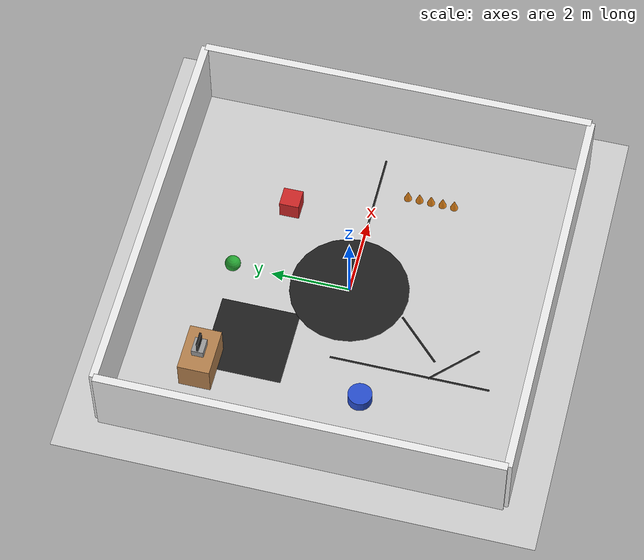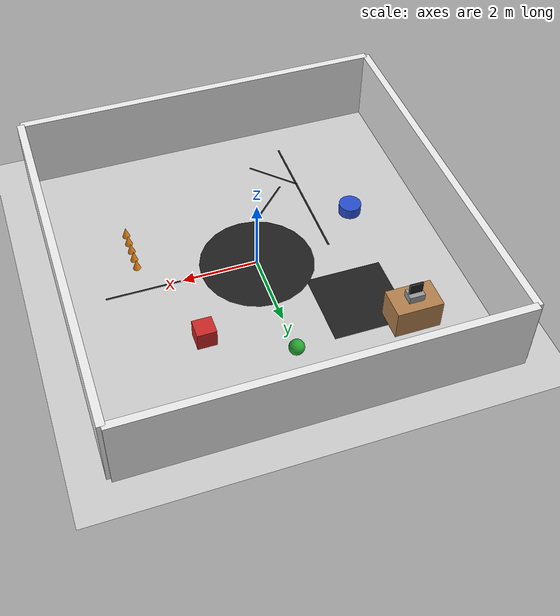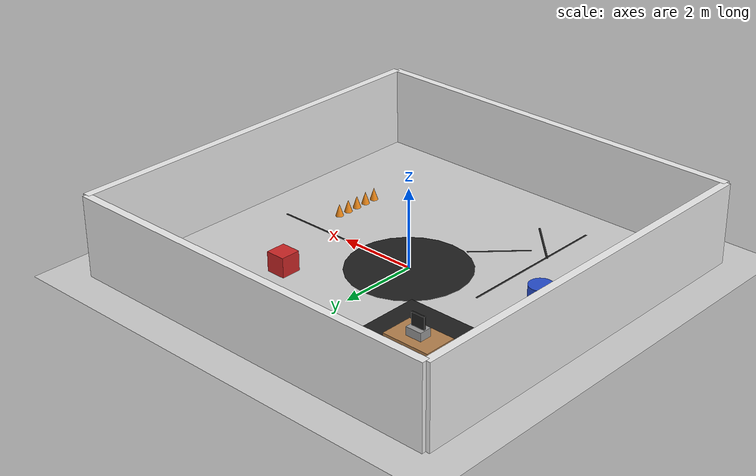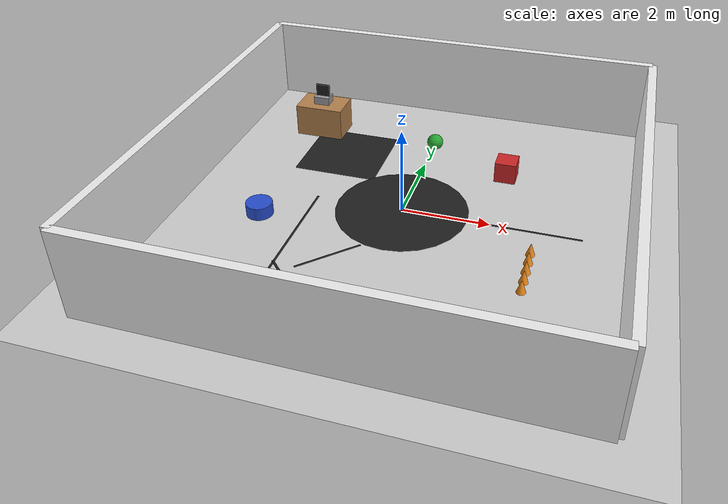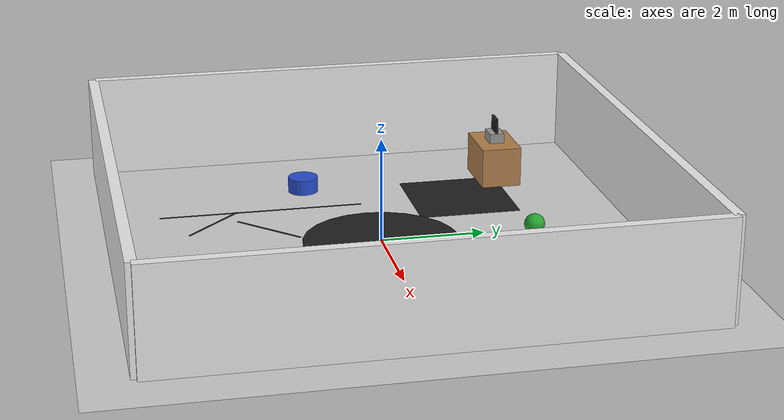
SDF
<?xml version="1.0" ?>
<sdf version="1.6">
  <world name="workshop">
    <!-- Lumière ambiante -->
    <scene>
      <ambient>0.8 0.8 0.8 1.0</ambient>
      <background>0.7 0.7 0.7 1.0</background>
      <shadows>true</shadows>
    </scene>

    <!-- Lumière du soleil -->
    <include>
      <uri>model://sun</uri>
    </include>

    <!-- Sol -->
    <model name="ground_plane">
      <static>true</static>
      <link name="link">
        <collision name="collision">
          <geometry>
            <plane>
              <normal>0 0 1</normal>
              <size>20 20</size>
            </plane>
          </geometry>
          <surface>
            <friction>
              <ode>
                <mu>0.8</mu>
                <mu2>0.8</mu2>
              </ode>
            </friction>
          </surface>
        </collision>
        <visual name="visual">
          <geometry>
            <plane>
              <normal>0 0 1</normal>
              <size>20 20</size>
            </plane>
          </geometry>
          <material>
            <script>
              <uri>file://media/materials/scripts/gazebo.material</uri>
              <name>Gazebo/Grey</name>
            </script>
          </material>
        </visual>
      </link>
    </model>

    <!-- Marquages au sol pour l'atelier -->
    <model name="floor_markings">
      <static>true</static>
      <link name="link">
        <visual name="straight_line">
          <pose>2 0 0.001 0 0 0</pose>
          <geometry>
            <box>
              <size>4 0.05 0.002</size>
            </box>
          </geometry>
          <material>
            <script>
              <uri>file://media/materials/scripts/gazebo.material</uri>
              <name>Gazebo/Black</name>
            </script>
          </material>
        </visual>

        <visual name="circle">
          <pose>0 0 0.001 0 0 0</pose>
          <geometry>
            <cylinder>
              <radius>1.5</radius>
              <length>0.002</length>
            </cylinder>
          </geometry>
          <material>
            <script>
              <uri>file://media/materials/scripts/gazebo.material</uri>
              <name>Gazebo/Black</name>
            </script>
            <ambient>0 0 0 1</ambient>
            <diffuse>0 0 0 1</diffuse>
            <specular>0 0 0 0</specular>
            <emissive>0 0 0 1</emissive>
          </material>
        </visual>

        <visual name="square">
          <pose>-2 2 0.001 0 0 0</pose>
          <geometry>
            <box>
              <size>2 2 0.002</size>
            </box>
          </geometry>
          <material>
            <script>
              <uri>file://media/materials/scripts/gazebo.material</uri>
              <name>Gazebo/Black</name>
            </script>
          </material>
        </visual>

        <visual name="zigzag">
          <pose>-2 -2 0.001 0 0 0</pose>
          <geometry>
            <box>
              <size>0.05 4 0.002</size>
            </box>
          </geometry>
          <material>
            <script>
              <uri>file://media/materials/scripts/gazebo.material</uri>
              <name>Gazebo/Black</name>
            </script>
          </material>
        </visual>

        <visual name="zigzag_1">
          <pose>-1.5 -3 0.001 0 0 0.785</pose>
          <geometry>
            <box>
              <size>0.05 1.5 0.002</size>
            </box>
          </geometry>
          <material>
            <script>
              <uri>file://media/materials/scripts/gazebo.material</uri>
              <name>Gazebo/Black</name>
            </script>
          </material>
        </visual>

        <visual name="zigzag_2">
          <pose>-1 -2 0.001 0 0 -0.785</pose>
          <geometry>
            <box>
              <size>0.05 1.5 0.002</size>
            </box>
          </geometry>
          <material>
            <script>
              <uri>file://media/materials/scripts/gazebo.material</uri>
              <name>Gazebo/Black</name>
            </script>
          </material>
        </visual>
      </link>
    </model>

    <!-- Murs de l'atelier -->
    <model name="workshop_walls">
      <static>true</static>
      <link name="link">
        <collision name="wall_1_collision">
          <pose>0 5 1 0 0 0</pose>
          <geometry>
            <box>
              <size>10 0.2 2</size>
            </box>
          </geometry>
        </collision>
        <visual name="wall_1_visual">
          <pose>0 5 1 0 0 0</pose>
          <geometry>
            <box>
              <size>10 0.2 2</size>
            </box>
          </geometry>
          <material>
            <script>
              <uri>file://media/materials/scripts/gazebo.material</uri>
              <name>Gazebo/White</name>
            </script>
          </material>
        </visual>

        <collision name="wall_2_collision">
          <pose>0 -5 1 0 0 0</pose>
          <geometry>
            <box>
              <size>10 0.2 2</size>
            </box>
          </geometry>
        </collision>
        <visual name="wall_2_visual">
          <pose>0 -5 1 0 0 0</pose>
          <geometry>
            <box>
              <size>10 0.2 2</size>
            </box>
          </geometry>
          <material>
            <script>
              <uri>file://media/materials/scripts/gazebo.material</uri>
              <name>Gazebo/White</name>
            </script>
          </material>
        </visual>

        <collision name="wall_3_collision">
          <pose>5 0 1 0 0 1.5708</pose>
          <geometry>
            <box>
              <size>10 0.2 2</size>
            </box>
          </geometry>
        </collision>
        <visual name="wall_3_visual">
          <pose>5 0 1 0 0 1.5708</pose>
          <geometry>
            <box>
              <size>10 0.2 2</size>
            </box>
          </geometry>
          <material>
            <script>
              <uri>file://media/materials/scripts/gazebo.material</uri>
              <name>Gazebo/White</name>
            </script>
          </material>
        </visual>

        <collision name="wall_4_collision">
          <pose>-5 0 1 0 0 1.5708</pose>
          <geometry>
            <box>
              <size>10 0.2 2</size>
            </box>
          </geometry>
        </collision>
        <visual name="wall_4_visual">
          <pose>-5 0 1 0 0 1.5708</pose>
          <geometry>
            <box>
              <size>10 0.2 2</size>
            </box>
          </geometry>
          <material>
            <script>
              <uri>file://media/materials/scripts/gazebo.material</uri>
              <name>Gazebo/White</name>
            </script>
          </material>
        </visual>
      </link>
    </model>

    <!-- Obstacles simples -->
    <model name="obstacle_1">
      <static>true</static>
      <link name="link">
        <collision name="collision">
          <pose>2 2 0.25 0 0 0</pose>
          <geometry>
            <box>
              <size>0.5 0.5 0.5</size>
            </box>
          </geometry>
        </collision>
        <visual name="visual">
          <pose>2 2 0.25 0 0 0</pose>
          <geometry>
            <box>
              <size>0.5 0.5 0.5</size>
            </box>
          </geometry>
          <material>
            <script>
              <uri>file://media/materials/scripts/gazebo.material</uri>
              <name>Gazebo/Red</name>
            </script>
          </material>
        </visual>
      </link>
    </model>

    <model name="obstacle_2">
      <static>true</static>
      <link name="link">
        <collision name="collision">
          <pose>-3 -1 0.15 0 0 0</pose>
          <geometry>
            <cylinder>
              <radius>0.3</radius>
              <length>0.3</length>
            </cylinder>
          </geometry>
        </collision>
        <visual name="visual">
          <pose>-3 -1 0.15 0 0 0</pose>
          <geometry>
            <cylinder>
              <radius>0.3</radius>
              <length>0.3</length>
            </cylinder>
          </geometry>
          <material>
            <script>
              <uri>file://media/materials/scripts/gazebo.material</uri>
              <name>Gazebo/Blue</name>
            </script>
          </material>
        </visual>
      </link>
    </model>

    <model name="obstacle_3">
      <static>true</static>
      <link name="link">
        <collision name="collision">
          <pose>0 3 0.1 0 0 0</pose>
          <geometry>
            <sphere>
              <radius>0.2</radius>
            </sphere>
          </geometry>
        </collision>
        <visual name="visual">
          <pose>0 3 0.1 0 0 0</pose>
          <geometry>
            <sphere>
              <radius>0.2</radius>
            </sphere>
          </geometry>
          <material>
            <script>
              <uri>file://media/materials/scripts/gazebo.material</uri>
              <name>Gazebo/Green</name>
            </script>
          </material>
        </visual>
      </link>
    </model>

    <!-- Cônes pour le slalom -->
    <model name="cone_1">
      <static>true</static>
      <link name="link">
        <collision name="collision">
          <pose>3 -2 0.15 0 0 0</pose>
          <geometry>
            <cone>
              <radius>0.1</radius>
              <length>0.3</length>
            </cone>
          </geometry>
        </collision>
        <visual name="visual">
          <pose>3 -2 0.15 0 0 0</pose>
          <geometry>
            <cone>
              <radius>0.1</radius>
              <length>0.3</length>
            </cone>
          </geometry>
          <material>
            <script>
              <uri>file://media/materials/scripts/gazebo.material</uri>
              <name>Gazebo/Orange</name>
            </script>
          </material>
        </visual>
      </link>
    </model>

    <model name="cone_2">
      <static>true</static>
      <link name="link">
        <collision name="collision">
          <pose>3 -1.7 0.15 0 0 0</pose>
          <geometry>
            <cone>
              <radius>0.1</radius>
              <length>0.3</length>
            </cone>
          </geometry>
        </collision>
        <visual name="visual">
          <pose>3 -1.7 0.15 0 0 0</pose>
          <geometry>
            <cone>
              <radius>0.1</radius>
              <length>0.3</length>
            </cone>
          </geometry>
          <material>
            <script>
              <uri>file://media/materials/scripts/gazebo.material</uri>
              <name>Gazebo/Orange</name>
            </script>
          </material>
        </visual>
      </link>
    </model>

    <model name="cone_3">
      <static>true</static>
      <link name="link">
        <collision name="collision">
          <pose>3 -1.4 0.15 0 0 0</pose>
          <geometry>
            <cone>
              <radius>0.1</radius>
              <length>0.3</length>
            </cone>
          </geometry>
        </collision>
        <visual name="visual">
          <pose>3 -1.4 0.15 0 0 0</pose>
          <geometry>
            <cone>
              <radius>0.1</radius>
              <length>0.3</length>
            </cone>
          </geometry>
          <material>
            <script>
              <uri>file://media/materials/scripts/gazebo.material</uri>
              <name>Gazebo/Orange</name>
            </script>
          </material>
        </visual>
      </link>
    </model>

    <model name="cone_4">
      <static>true</static>
      <link name="link">
        <collision name="collision">
          <pose>3 -1.1 0.15 0 0 0</pose>
          <geometry>
            <cone>
              <radius>0.1</radius>
              <length>0.3</length>
            </cone>
          </geometry>
        </collision>
        <visual name="visual">
          <pose>3 -1.1 0.15 0 0 0</pose>
          <geometry>
            <cone>
              <radius>0.1</radius>
              <length>0.3</length>
            </cone>
          </geometry>
          <material>
            <script>
              <uri>file://media/materials/scripts/gazebo.material</uri>
              <name>Gazebo/Orange</name>
            </script>
          </material>
        </visual>
      </link>
    </model>

    <model name="cone_5">
      <static>true</static>
      <link name="link">
        <collision name="collision">
          <pose>3 -0.8 0.15 0 0 0</pose>
          <geometry>
            <cone>
              <radius>0.1</radius>
              <length>0.3</length>
            </cone>
          </geometry>
        </collision>
        <visual name="visual">
          <pose>3 -0.8 0.15 0 0 0</pose>
          <geometry>
            <cone>
              <radius>0.1</radius>
              <length>0.3</length>
            </cone>
          </geometry>
          <material>
            <script>
              <uri>file://media/materials/scripts/gazebo.material</uri>
              <name>Gazebo/Orange</name>
            </script>
          </material>
        </visual>
      </link>
    </model>

    <!-- Table avec ordinateur (représentation symbolique) -->
    <model name="desk">
      <static>true</static>
      <link name="link">
        <collision name="collision">
          <pose>-3 3 0.4 0 0 0</pose>
          <geometry>
            <box>
              <size>1.2 0.8 0.8</size>
            </box>
          </geometry>
        </collision>
        <visual name="visual">
          <pose>-3 3 0.4 0 0 0</pose>
          <geometry>
            <box>
              <size>1.2 0.8 0.8</size>
            </box>
          </geometry>
          <material>
            <script>
              <uri>file://media/materials/scripts/gazebo.material</uri>
              <name>Gazebo/Wood</name>
            </script>
          </material>
        </visual>

        <!-- Ordinateur sur la table -->
        <visual name="computer">
          <pose>-3 3 0.9 0 0 0</pose>
          <geometry>
            <box>
              <size>0.4 0.3 0.2</size>
            </box>
          </geometry>
          <material>
            <script>
              <uri>file://media/materials/scripts/gazebo.material</uri>
              <name>Gazebo/Grey</name>
            </script>
          </material>
        </visual>

        <!-- Écran -->
        <visual name="screen">
          <pose>-3 3 1.15 0 0 0</pose>
          <geometry>
            <box>
              <size>0.35 0.05 0.3</size>
            </box>
          </geometry>
          <material>
            <script>
              <uri>file://media/materials/scripts/gazebo.material</uri>
              <name>Gazebo/Black</name>
            </script>
          </material>
        </visual>
      </link>
    </model>

    <!-- Paramètres de physique -->
    <physics type="ode">
      <real_time_update_rate>1000.0</real_time_update_rate>
      <max_step_size>0.001</max_step_size>
      <real_time_factor>1</real_time_factor>
      <ode>
        <solver>
          <type>quick</type>
          <iters>150</iters>
          <precon_iters>0</precon_iters>
          <sor>1.400000</sor>
          <use_dynamic_moi_rescaling>1</use_dynamic_moi_rescaling>
        </solver>
        <constraints>
          <cfm>0.00001</cfm>
          <erp>0.2</erp>
          <contact_max_correcting_vel>2000.000000</contact_max_correcting_vel>
          <contact_surface_layer>0.01000</contact_surface_layer>
        </constraints>
      </ode>
    </physics>
  </world>
</sdf>
